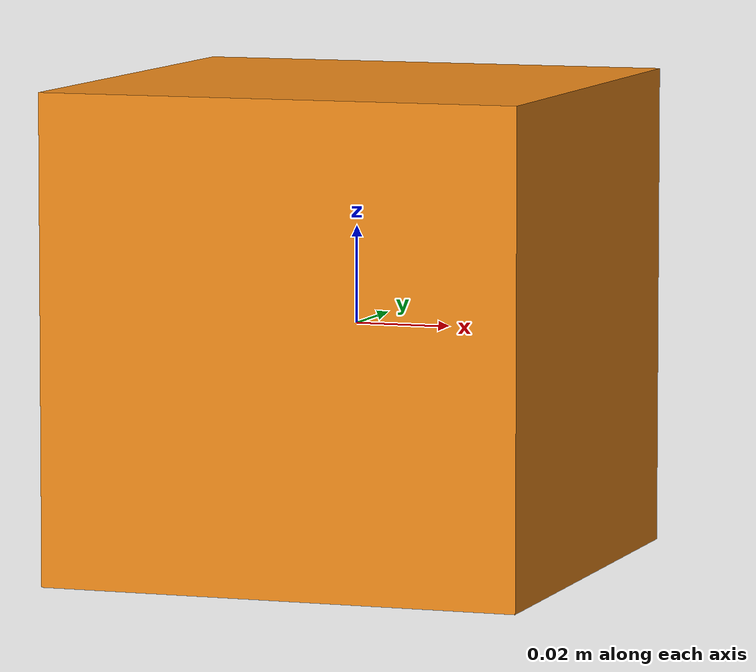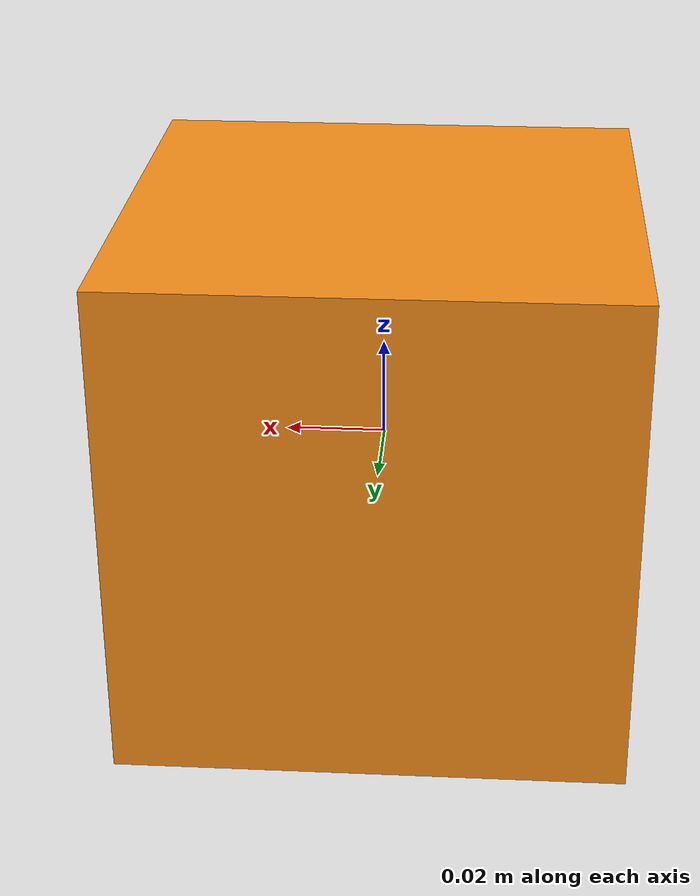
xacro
<?xml version="1.0"?>

<robot xmlns:xacro="http://www.ros.org/wiki/xacro" name="2dof_robot">
  <xacro:arg name="prefix" default="auv"/>

  <!-- Import RRBot macro -->
  <xacro:include filename="$(find auv_description)/urdf/auv_description.urdf.xacro"/>

  <!-- Import Rviz colors -->
  <xacro:include filename="$(find auv_description)/urdf/auv.materials.xacro"/>

  <!-- Import RRBot ros2_control description -->
  <xacro:include filename="$(find auv_description)/urdf/auv.ros2_control.xacro"/>

  <!-- Used for fixing robot -->

  <xacro:auv_bot parent="world"
    prefix="$(arg prefix)">
    <origin xyz="0 0 0" rpy="0 0 0"/>
  </xacro:auv_bot>

  <xacro:auv_ros2_control name="auv_hw_interface" prefix="$(arg prefix)"/>
</robot>

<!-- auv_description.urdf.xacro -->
<robot xmlns:xacro="http://www.ros.org/wiki/xacro">

  <xacro:macro name="auv_bot" params="parent prefix *origin">

    <!-- Base Link -->
    <link name="${prefix}/base_link">
      <visual>
        <origin xyz="0 0 0" rpy="0 0 0"/>
        <geometry>
          <box size="0.1 0.1 0.1"/>
        </geometry>
        <material name="orange"/>
      </visual>
    </link>

    <!-- Middle Link -->
    <link name="${prefix}/link1">
      <collision>
        <origin xyz="0 0 0" rpy="0 0 0"/>
        <geometry>
          <box size="0 0 0"/>
        </geometry>
      </collision>
      <visual>
        <origin xyz="0 0 0" rpy="0 0 0"/>
        <geometry>
          <box size="0 0 0"/>
        </geometry>
        <material name="yellow"/>
      </visual>
    </link>

    <!-- Top Link -->
    <link name="${prefix}/link2">
      <visual>
        <origin xyz="0 0 0" rpy="0 0 0"/>
        <geometry>
          <box size="0 0 0"/>
        </geometry>
        <material name="orange"/>
      </visual>
    </link>

    <joint name="${prefix}/joint1" type="continuous">
      <parent link="${prefix}/base_link"/>
      <child link="${prefix}/link1"/>
      <origin xyz="0 0 0" rpy="0 0 0"/>
      <axis xyz="0 1 0"/>
      <limit effort="100" velocity="1.0"/>
    </joint>

    <joint name="${prefix}/joint2" type="continuous">
      <parent link="${prefix}/link1"/>
      <child link="${prefix}/link2"/>
      <origin xyz="0 0 0" rpy="0 0 0"/>
      <axis xyz="0 1 0"/>
      <limit effort="100" velocity="1.0"/>
    </joint>

    <!-- Thrusters -->

    <link name="${prefix}/thruster3"/>
    <link name="${prefix}/thruster4"/>

    <joint name="${prefix}/thruster3_joint" type="continuous">
      <parent link="${prefix}/base_link"/>
      <child link="${prefix}/thruster3"/>
      <origin xyz="-0.35 0.35 0" rpy="0 0 0.785398"/>
      <axis xyz="1 0 0"/>
      <limit effort="100" velocity="1.0"/>
    </joint>

    <joint name="${prefix}/thruster4_joint" type="continuous">
      <parent link="${prefix}/base_link"/>
      <child link="${prefix}/thruster4"/>
      <origin xyz="-0.35 -0.35 0" rpy="0 0 -0.785398"/>
      <axis xyz="1 0 0"/>
      <limit effort="100" velocity="1.0"/>
    </joint>

  </xacro:macro>

</robot>
